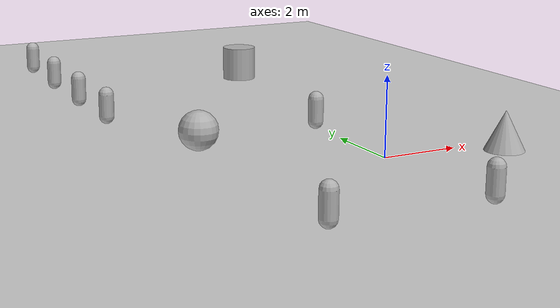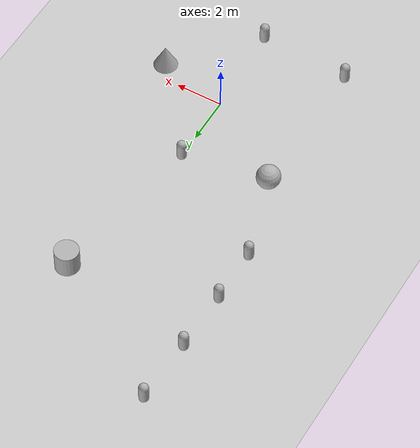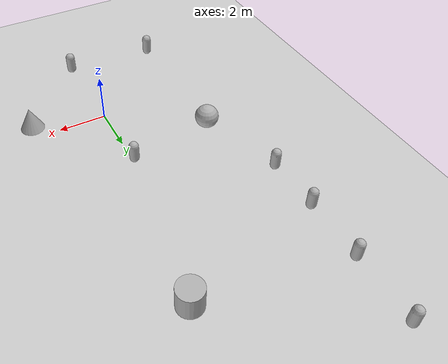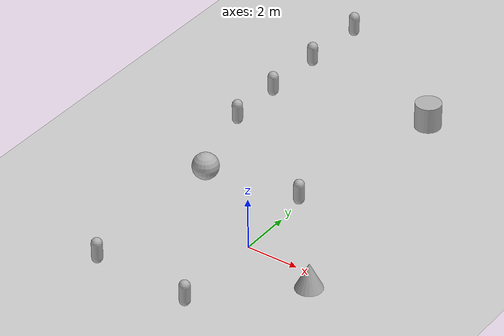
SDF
<sdf version="1.10">
 <world name="empty">
  <physics name="1ms" type="ignored">
   <max_step_size>0.001</max_step_size>
   <real_time_factor>1</real_time_factor>
   <real_time_update_rate>1000</real_time_update_rate>
  </physics>
  <plugin name="gz::sim::systems::Physics" filename="gz-sim-physics-system"/>
  <plugin name="gz::sim::systems::UserCommands" filename="gz-sim-user-commands-system"/>
  <plugin name="gz::sim::systems::SceneBroadcaster" filename="gz-sim-scene-broadcaster-system"/>
  <plugin name="gz::sim::systems::Sensors" filename="gz-sim-sensors-system">
   <render_engine>ogre2</render_engine>
  </plugin>
  <plugin name="gz::sim::systems::Contact" filename="gz-sim-contact-system"/>
  <gravity>0 0 -9.8000000000000007</gravity>
  <magnetic_field>5.5644999999999998e-06 2.2875799999999999e-05 -4.2388400000000002e-05</magnetic_field>
  <atmosphere type="adiabatic"/>
  <scene>
   <ambient>0.400000006 0.400000006 0.400000006 1</ambient>
   <background>0.699999988 0.699999988 0.699999988 1</background>
   <shadows>true</shadows>
  </scene>
  <model name="ground_plane">
   <static>true</static>
   <link name="link">
    <collision name="collision">
     <geometry><plane><normal>0 0 1</normal><size>100 100</size></plane></geometry>
    </collision>
    <visual name="visual">
     <geometry><plane><normal>0 0 1</normal><size>100 100</size></plane></geometry>
     <material>
      <ambient>0.800000012 0.800000012 0.800000012 1</ambient>
      <diffuse>0.800000012 0.800000012 0.800000012 1</diffuse>
      <specular>0.800000012 0.800000012 0.800000012 1</specular>
     </material>
    </visual>
    <inertial>
     <mass>1</mass>
     <inertia><ixx>1</ixx><ixy>0</ixy><ixz>0</ixz><iyy>1</iyy><iyz>0</iyz><izz>1</izz></inertia>
    </inertial>
   </link>
  </model>
  <model name="capsule">
   <pose>-3.7130200862884521 -3.6050710678100586 0.49999999970893311 0 0 0</pose>
   <link name="capsule_link">
    <inertial>
     <inertia>
      <ixx>0.074153999999999998</ixx>
      <ixy>0</ixy>
      <ixz>0</ixz>
      <iyy>0.074153999999999998</iyy>
      <iyz>0</iyz>
      <izz>0.018769000000000001</izz>
     </inertia>
     <mass>1</mass>
    </inertial>
    <collision name="capsule_collision">
     <geometry>
      <capsule><radius>0.20000000000000001</radius><length>0.59999999999999998</length></capsule>
     </geometry>
    </collision>
    <visual name="capsule_visual">
     <geometry>
      <capsule><radius>0.20000000000000001</radius><length>0.59999999999999998</length></capsule>
     </geometry>
     <material>
      <ambient>0.300000012 0.300000012 0.300000012 1</ambient>
      <diffuse>0.699999988 0.699999988 0.699999988 1</diffuse>
      <specular>1 1 1 1</specular>
     </material>
    </visual>
   </link>
   <static>false</static>
  </model>
  <model name="sphere">
   <pose>-3.6724588750257747 2.5767556525929947 0.49999999970893377 0 0 0</pose>
   <link name="sphere_link">
    <inertial>
     <inertia>
      <ixx>0.10000000000000001</ixx>
      <ixy>0</ixy>
      <ixz>0</ixz>
      <iyy>0.10000000000000001</iyy>
      <iyz>0</iyz>
      <izz>0.10000000000000001</izz>
     </inertia>
     <mass>1</mass>
    </inertial>
    <collision name="sphere_collision"><geometry><sphere><radius>0.5</radius></sphere></geometry></collision>
    <visual name="sphere_visual">
     <geometry><sphere><radius>0.5</radius></sphere></geometry>
     <material>
      <ambient>0.300000012 0.300000012 0.300000012 1</ambient>
      <diffuse>0.699999988 0.699999988 0.699999988 1</diffuse>
      <specular>1 1 1 1</specular>
     </material>
    </visual>
   </link>
   <static>false</static>
  </model>
  <model name="cone">
   <pose>2.9899637651663005 -0.70354598531292967 0.49999999554637975 3.4067011361807003e-09 -9.0772643733488502e-09 -1.5238244451661923e-06</pose>
   <link name="cone_link">
    <inertial>
     <inertia>
      <ixx>0.074999999999999997</ixx>
      <ixy>0</ixy>
      <ixz>0</ixz>
      <iyy>0.074999999999999997</iyy>
      <iyz>0</iyz>
      <izz>0.074999999999999997</izz>
     </inertia>
     <mass>1</mass>
    </inertial>
    <collision name="cone_collision">
     <geometry><cone><radius>0.5</radius><length>1</length></cone></geometry>
    </collision>
    <visual name="cone_visual">
     <geometry><cone><radius>0.5</radius><length>1</length></cone></geometry>
     <material>
      <ambient>0.300000012 0.300000012 0.300000012 1</ambient>
      <diffuse>0.699999988 0.699999988 0.699999988 1</diffuse>
      <specular>1 1 1 1</specular>
     </material>
    </visual>
   </link>
   <static>false</static>
  </model>
  <model name="capsule_0">
   <pose>-0.062116910319596208 3.1497468775291697 0.49999999970893311 0 0 0</pose>
   <link name="capsule_link">
    <inertial>
     <inertia>
      <ixx>0.074153999999999998</ixx>
      <ixy>0</ixy>
      <ixz>0</ixz>
      <iyy>0.074153999999999998</iyy>
      <iyz>0</iyz>
      <izz>0.018769000000000001</izz>
     </inertia>
     <mass>1</mass>
    </inertial>
    <collision name="capsule_collision">
     <geometry>
      <capsule><radius>0.20000000000000001</radius><length>0.59999999999999998</length></capsule>
     </geometry>
    </collision>
    <visual name="capsule_visual">
     <geometry>
      <capsule><radius>0.20000000000000001</radius><length>0.59999999999999998</length></capsule>
     </geometry>
     <material>
      <ambient>0.300000012 0.300000012 0.300000012 1</ambient>
      <diffuse>0.699999988 0.699999988 0.699999988 1</diffuse>
      <specular>1 1 1 1</specular>
     </material>
    </visual>
   </link>
   <static>false</static>
  </model>
  <model name="capsule_1">
   <pose>0.13750707830176179 -3.829824897996196 0.49999999970893311 0 0 0</pose>
   <link name="capsule_link">
    <inertial>
     <inertia>
      <ixx>0.074153999999999998</ixx>
      <ixy>0</ixy>
      <ixz>0</ixz>
      <iyy>0.074153999999999998</iyy>
      <iyz>0</iyz>
      <izz>0.018769000000000001</izz>
     </inertia>
     <mass>1</mass>
    </inertial>
    <collision name="capsule_collision">
     <geometry>
      <capsule><radius>0.20000000000000001</radius><length>0.59999999999999998</length></capsule>
     </geometry>
    </collision>
    <visual name="capsule_visual">
     <geometry>
      <capsule><radius>0.20000000000000001</radius><length>0.59999999999999998</length></capsule>
     </geometry>
     <material>
      <ambient>0.300000012 0.300000012 0.300000012 1</ambient>
      <diffuse>0.699999988 0.699999988 0.699999988 1</diffuse>
      <specular>1 1 1 1</specular>
     </material>
    </visual>
   </link>
   <static>false</static>
  </model>
  <model name="capsule_2">
   <pose>-4.7882571574366715 6.0756517595916506 0.499999999902001 0 0 0</pose>
   <link name="capsule_link">
    <inertial>
     <inertia>
      <ixx>0.074153999999999998</ixx>
      <ixy>0</ixy>
      <ixz>0</ixz>
      <iyy>0.074153999999999998</iyy>
      <iyz>0</iyz>
      <izz>0.018769000000000001</izz>
     </inertia>
     <mass>1</mass>
    </inertial>
    <collision name="capsule_collision">
     <geometry>
      <capsule><radius>0.20000000000000001</radius><length>0.59999999999999998</length></capsule>
     </geometry>
    </collision>
    <visual name="capsule_visual">
     <geometry>
      <capsule><radius>0.20000000000000001</radius><length>0.59999999999999998</length></capsule>
     </geometry>
     <material>
      <ambient>0.300000012 0.300000012 0.300000012 1</ambient>
      <diffuse>0.699999988 0.699999988 0.699999988 1</diffuse>
      <specular>1 1 1 1</specular>
     </material>
    </visual>
   </link>
   <static>false</static>
  </model>
  <model name="capsule_3">
   <pose>-4.8111629835894929 8.3799883376720015 0.499999999902001 0 0 0</pose>
   <link name="capsule_link">
    <inertial>
     <inertia>
      <ixx>0.074153999999999998</ixx>
      <ixy>0</ixy>
      <ixz>0</ixz>
      <iyy>0.074153999999999998</iyy>
      <iyz>0</iyz>
      <izz>0.018769000000000001</izz>
     </inertia>
     <mass>1</mass>
    </inertial>
    <collision name="capsule_collision">
     <geometry>
      <capsule><radius>0.20000000000000001</radius><length>0.59999999999999998</length></capsule>
     </geometry>
    </collision>
    <visual name="capsule_visual">
     <geometry>
      <capsule><radius>0.20000000000000001</radius><length>0.59999999999999998</length></capsule>
     </geometry>
     <material>
      <ambient>0.300000012 0.300000012 0.300000012 1</ambient>
      <diffuse>0.699999988 0.699999988 0.699999988 1</diffuse>
      <specular>1 1 1 1</specular>
     </material>
    </visual>
   </link>
   <static>false</static>
  </model>
  <model name="capsule_4">
   <pose>-4.7689173831803693 10.918142006223377 0.499999999902001 0 0 0</pose>
   <link name="capsule_link">
    <inertial>
     <inertia>
      <ixx>0.074153999999999998</ixx>
      <ixy>0</ixy>
      <ixz>0</ixz>
      <iyy>0.074153999999999998</iyy>
      <iyz>0</iyz>
      <izz>0.018769000000000001</izz>
     </inertia>
     <mass>1</mass>
    </inertial>
    <collision name="capsule_collision">
     <geometry>
      <capsule><radius>0.20000000000000001</radius><length>0.59999999999999998</length></capsule>
     </geometry>
    </collision>
    <visual name="capsule_visual">
     <geometry>
      <capsule><radius>0.20000000000000001</radius><length>0.59999999999999998</length></capsule>
     </geometry>
     <material>
      <ambient>0.300000012 0.300000012 0.300000012 1</ambient>
      <diffuse>0.699999988 0.699999988 0.699999988 1</diffuse>
      <specular>1 1 1 1</specular>
     </material>
    </visual>
   </link>
   <static>false</static>
  </model>
  <model name="capsule_5">
   <pose>-4.6754541937369307 13.615428755511529 0.499999999902001 0 0 0</pose>
   <link name="capsule_link">
    <inertial>
     <inertia>
      <ixx>0.074153999999999998</ixx>
      <ixy>0</ixy>
      <ixz>0</ixz>
      <iyy>0.074153999999999998</iyy>
      <iyz>0</iyz>
      <izz>0.018769000000000001</izz>
     </inertia>
     <mass>1</mass>
    </inertial>
    <collision name="capsule_collision">
     <geometry>
      <capsule><radius>0.20000000000000001</radius><length>0.59999999999999998</length></capsule>
     </geometry>
    </collision>
    <visual name="capsule_visual">
     <geometry>
      <capsule><radius>0.20000000000000001</radius><length>0.59999999999999998</length></capsule>
     </geometry>
     <material>
      <ambient>0.300000012 0.300000012 0.300000012 1</ambient>
      <diffuse>0.699999988 0.699999988 0.699999988 1</diffuse>
      <specular>1 1 1 1</specular>
     </material>
    </visual>
   </link>
   <static>false</static>
  </model>
  <model name="cylinder">
   <pose>1.0150169610445809 9.8832104597682449 0.49999942638036005 4.4597992774869703e-19 -1.5745453663070353e-19 -5.1819702500824844e-21</pose>
   <link name="cylinder_link">
    <inertial>
     <inertia>
      <ixx>0.14580000000000001</ixx>
      <ixy>0</ixy>
      <ixz>0</ixz>
      <iyy>0.14580000000000001</iyy>
      <iyz>0</iyz>
      <izz>0.125</izz>
     </inertia>
     <mass>1</mass>
    </inertial>
    <collision name="cylinder_collision">
     <geometry><cylinder><radius>0.5</radius><length>1</length></cylinder></geometry>
    </collision>
    <visual name="cylinder_visual">
     <geometry><cylinder><radius>0.5</radius><length>1</length></cylinder></geometry>
     <material>
      <ambient>0.300000012 0.300000012 0.300000012 1</ambient>
      <diffuse>0.699999988 0.699999988 0.699999988 1</diffuse>
      <specular>1 1 1 1</specular>
     </material>
    </visual>
   </link>
   <static>false</static>
  </model>
  <light name="sun" type="directional">
   <pose>0 0 10 0 0 0</pose>
   <intensity>1</intensity>
   <direction>-0.5 0.10000000000000001 -0.90000000000000002</direction>
   <diffuse>0.800000012 0.800000012 0.800000012 1</diffuse>
   <specular>0.200000003 0.200000003 0.200000003 1</specular>
   <attenuation>
    <range>1000</range>
    <linear>0.01</linear>
    <constant>0.90000000000000002</constant>
    <quadratic>0.001</quadratic>
   </attenuation>
   <spot><inner_angle>0</inner_angle><outer_angle>0</outer_angle><falloff>0</falloff></spot>
  </light>
 </world>
</sdf>
